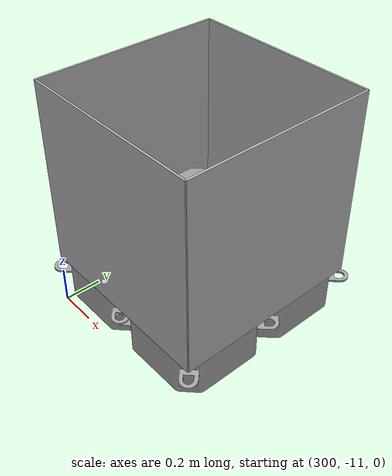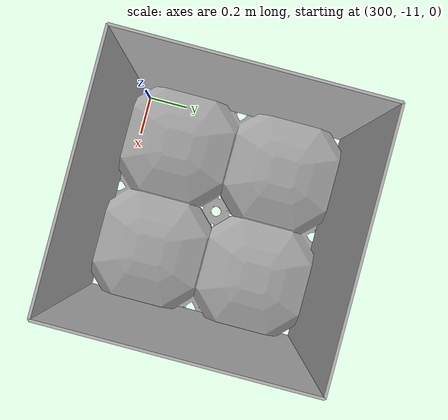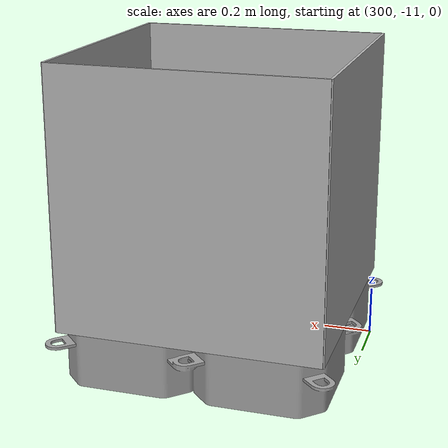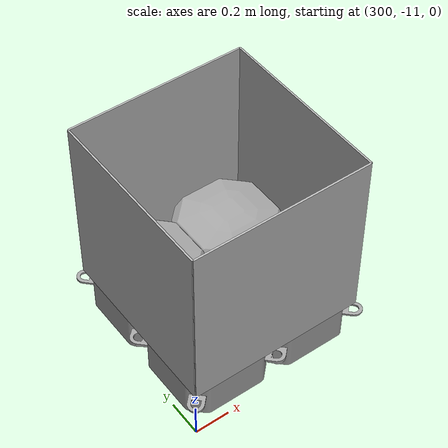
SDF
<?xml version="1.0" ?>
<sdf version="1.4">
  <world name="SandIsland">

    <scene>
      <ambient>1 1 1 1</ambient>
      <shadows>true</shadows>
    </scene>

    <wind>
      <linear_velocity>0 0 0</linear_velocity> <!-- Wind linear velocity -->
    </wind >

    <!-- A global light source -->
    <include>
      <uri>model://sun</uri>
    </include>

    <!-- Additional light -->

    <gui fullscreen='0'>
      <camera name='user_camera'>
        <pose>-5 -26.7 28 0 0.74 1.2</pose>
        <view_controller>orbit</view_controller>
      </camera>
    </gui>

    <!-- The models below should be included in kingfisher_gazebo package -->
    <!--include-->
      <!-- Note - the pose tag doesn't seem to work for heightmaps, so you need
      to go into the model file to change the altitutde/height!-->
    <include>
      <pose> 0 0 0 0 0 0 </pose>
      <uri>model://models/ocean</uri>
    </include>

    <!-- AprilTag -->

    <include>
      <pose> 300 -10 0.8 0 0 0 </pose>
      <name>top_left</name>
      <uri>model://models/apriltag</uri>
      <param>value 2</param>
    </include>

  </world>
</sdf>

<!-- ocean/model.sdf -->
<sdf version="1.6">
    <model name="ocean">
        <static>true</static>
        <link name="link">
            <visual name="visual">
                <geometry>
                    <mesh>
                        <uri>meshes/waterlow_small.dae</uri>
                    </mesh>
                </geometry>
                <plugin filename="gz-sim-shader-param-system" name="gz::sim::systems::ShaderParam">
                    <shader language="glsl">
                        <vertex>materials/programs/GerstnerWaves_vs_330.glsl</vertex>
                        <fragment>materials/programs/GerstnerWaves_fs_330.glsl</fragment>
                    </shader>
                    <shader language="metal">
                        <vertex>materials/programs/GerstnerWaves_vs.metal</vertex>
                        <fragment>materials/programs/GerstnerWaves_fs.metal</fragment>
                    </shader>
                    <param>
                        <shader>vertex</shader>
                        <name>Nwaves</name>
                        <type>int</type>
                        <value>0</value>
                    </param>
                    <param>
                        <shader>vertex</shader>
                        <name>rescale</name>
                        <type>float</type>
                        <value>0.125</value>
                    </param>
                    <param>
                        <shader>vertex</shader>
                        <name>bumpScale</name>
                        <type>float_array</type>
                        <value>75 75</value>
                    </param>
                    <param>
                        <shader>vertex</shader>
                        <name>bumpSpeed</name>
                        <type>float_array</type>
                        <value>0.01 0.0</value>
                    </param>
                    <param>
                        <shader>vertex</shader>
                        <name>amplitude</name>
                        <type>float_array</type>
                        <value>0.42 0.28, 0.21</value>
                    </param>
                    <param>
                        <shader>vertex</shader>
                        <name>wavenumber</name>
                        <type>float_array</type>
                        <value>0.028 0.0896 0.0504</value>
                    </param>
                    <param>
                        <shader>vertex</shader>
                        <name>omega</name>
                        <type>float_array</type>
                        <value>0.5 1.7 1.0</value>
                    </param>
                    <param>
                        <shader>vertex</shader>
                        <name>dir0</name>
                        <type>float_array</type>
                        <value>-1.0 0.0</value>
                    </param>
                    <param>
                        <shader>vertex</shader>
                        <name>dir1</name>
                        <type>float_array</type>
                        <value>-0.7 0.7</value>
                    </param>
                    <param>
                        <shader>vertex</shader>
                        <name>dir2</name>
                        <type>float_array</type>
                        <value>0.7 0.7</value>
                    </param>
                    <param>
                        <shader>vertex</shader>
                        <name>steepness</name>
                        <type>float_array</type>
                        <value>1.0 1.5 0.8</value>
                    </param>
                    <param>
                        <shader>vertex</shader>
                        <name>tau</name>
                        <type>float</type>
                        <value>2.0</value>
                    </param>
                    <param>
                        <shader>vertex</shader>
                        <name>camera_position_object_space</name>
                    </param>
                    <param>
                        <shader>vertex</shader>
                        <name>worldviewproj_matrix</name>
                    </param>
                    <param>
                        <shader>vertex</shader>
                        <name>t</name>
                        <value>TIME</value>
                    </param>
                    <param>
                        <shader>fragment</shader>
                        <name>hdrMultiplier</name>
                        <type>float</type>
                        <value>0.4</value>
                    </param>
                    <param>
                        <shader>fragment</shader>
                        <name>fresnelPower</name>
                        <type>float</type>
                        <value>5.0</value>
                    </param>
                    <param>
                        <shader>fragment</shader>
                        <name>shallowColor</name>
                        <type>float_array</type>
                        <value>0.0 0.1 0.2 1.0</value>
                    </param>
                    <param>
                        <shader>fragment</shader>
                        <name>deepColor</name>
                        <type>float_array</type>
                        <value>0.0 0.05 0.02 1.0</value>
                    </param>
                    <param>
                        <shader>fragment</shader>
                        <name>cubeMap</name>
                        <type>texture_cube</type>
                        <value>materials/textures/skybox_lowres.dds</value>
                        <!-- arg: texture coord set index -->
                        <arg>1</arg>
                    </param>
                    <param>
                        <shader>fragment</shader>
                        <name>bumpMap</name>
                        <type>texture</type>
                        <value>materials/textures/wave_normals.dds</value>
                    </param>
                </plugin>
            </visual>
        </link>
    </model>
</sdf>

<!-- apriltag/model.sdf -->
<sdf version="1.6">

  <model name="apriltag">
    <static>true</static>
    <pose>0 0 -0.2 0 0 0</pose>

    <link name="link">
      <pose>0.25 -0.25 -0.3 0 0 0</pose>
      <collision name="collision">
        <geometry>
          <box>
            <size>1 1 0.4</size>
          </box>
        </geometry>
      </collision>
      <visual name="visual">
        <geometry>
          <mesh>
            <uri>model://dock_block_2x2/mesh/dock_block_2x2.dae</uri>
          </mesh>
        </geometry>
      </visual>
    </link>

    <link name="apriltag_1">
      <pose>0 -0.5 0 0 0 0</pose>
      <gravity>0</gravity>

     <inertial>
        <mass>0.001</mass>
        <inertia> <!-- inertias are tricky to compute -->
          <!-- http://gazebosim.org/tutorials?tut=inertia&cat=build_robot -->
          <ixx>0.001</ixx>       <!-- for a box: ixx = 0.083 * mass * (y*y + z*z) -->
          <ixy>0.001</ixy>         <!-- for a box: ixy = 0 -->
          <ixz>0.001</ixz>         <!-- for a box: ixz = 0 -->
          <iyy>0.001</iyy>       <!-- for a box: iyy = 0.083 * mass * (x*x + z*z) -->
          <iyz>0.001</iyz>         <!-- for a box: iyz = 0 -->
          <izz>0.001</izz>       <!-- for a box: izz = 0.083 * mass * (x*x + y*y) -->
        </inertia>
      </inertial>

      <collision name="collision">
        <geometry>
          <box>
            <size>0.01 1 1</size>
          </box>
        </geometry>
      </collision>

      <visual name="visual">
        <geometry>
          <box>
            <size>0.01 1 1</size>
          </box>
        </geometry>
        <material>
          <script>
            <uri>model://apriltag/materials/scripts</uri>
            <uri>model://apriltag/materials/textures</uri>
            <name>a_0/Image</name>
          </script>
        </material>
      </visual>
    </link>

    <link name="apriltag_2">
      <pose>1 -0.5 0 0 0 0</pose>
      <gravity>0</gravity>

     <inertial>
        <mass>0.001</mass>
        <inertia> <!-- inertias are tricky to compute -->
          <!-- http://gazebosim.org/tutorials?tut=inertia&cat=build_robot -->
          <ixx>0.001</ixx>       <!-- for a box: ixx = 0.083 * mass * (y*y + z*z) -->
          <ixy>0.001</ixy>         <!-- for a box: ixy = 0 -->
          <ixz>0.001</ixz>         <!-- for a box: ixz = 0 -->
          <iyy>0.001</iyy>       <!-- for a box: iyy = 0.083 * mass * (x*x + z*z) -->
          <iyz>0.001</iyz>         <!-- for a box: iyz = 0 -->
          <izz>0.001</izz>       <!-- for a box: izz = 0.083 * mass * (x*x + y*y) -->
        </inertia>
      </inertial>

      <collision name="collision">
        <geometry>
          <box>
            <size>0.01 1 1</size>
          </box>
        </geometry>
      </collision>

      <visual name="visual">
        <geometry>
          <box>
            <size>0.01 1 1</size>
          </box>
        </geometry>
        <material>
          <script>
            <uri>model://apriltag/materials/scripts</uri>
            <uri>model://apriltag/materials/textures</uri>
            <name>a_0/Image</name>
          </script>
        </material>
      </visual>
    </link>

    <link name="apriltag_3">
      <pose>0.5 0 0 0 0 1.570796327</pose>
      <gravity>0</gravity>

     <inertial>
        <mass>0.001</mass>
        <inertia> <!-- inertias are tricky to compute -->
          <!-- http://gazebosim.org/tutorials?tut=inertia&cat=build_robot -->
          <ixx>0.001</ixx>       <!-- for a box: ixx = 0.083 * mass * (y*y + z*z) -->
          <ixy>0.001</ixy>         <!-- for a box: ixy = 0 -->
          <ixz>0.001</ixz>         <!-- for a box: ixz = 0 -->
          <iyy>0.001</iyy>       <!-- for a box: iyy = 0.083 * mass * (x*x + z*z) -->
          <iyz>0.001</iyz>         <!-- for a box: iyz = 0 -->
          <izz>0.001</izz>       <!-- for a box: izz = 0.083 * mass * (x*x + y*y) -->
        </inertia>
      </inertial>

      <collision name="collision">
        <geometry>
          <box>
            <size>0.01 1 1</size>
          </box>
        </geometry>
      </collision>

      <visual name="visual">
        <geometry>
          <box>
            <size>0.01 1 1</size>
          </box>
        </geometry>
        <material>
          <script>
            <uri>model://apriltag/materials/scripts</uri>
            <uri>model://apriltag/materials/textures</uri>
            <name>a_1/Image</name>
          </script>
        </material>
      </visual>
    </link>

    <link name="apriltag_4">
      <pose>0.5 -1 0 0 0 1.570796327</pose>
      <gravity>0</gravity>

     <inertial>
        <mass>0.001</mass>
        <inertia> <!-- inertias are tricky to compute -->
          <!-- http://gazebosim.org/tutorials?tut=inertia&cat=build_robot -->
          <ixx>0.001</ixx>       <!-- for a box: ixx = 0.083 * mass * (y*y + z*z) -->
          <ixy>0.001</ixy>         <!-- for a box: ixy = 0 -->
          <ixz>0.001</ixz>         <!-- for a box: ixz = 0 -->
          <iyy>0.001</iyy>       <!-- for a box: iyy = 0.083 * mass * (x*x + z*z) -->
          <iyz>0.001</iyz>         <!-- for a box: iyz = 0 -->
          <izz>0.001</izz>       <!-- for a box: izz = 0.083 * mass * (x*x + y*y) -->
        </inertia>
      </inertial>

      <collision name="collision">
        <geometry>
          <box>
            <size>0.01 1 1</size>
          </box>
        </geometry>
      </collision>

      <visual name="visual">
        <geometry>
          <box>
            <size>0.01 1 1</size>
          </box>
        </geometry>
        <material>
          <script>
            <uri>model://apriltag/materials/scripts</uri>
            <uri>model://apriltag/materials/textures</uri>
            <name>a_1/Image</name>
          </script>
        </material>
      </visual>
    </link>

  </model>
</sdf>
